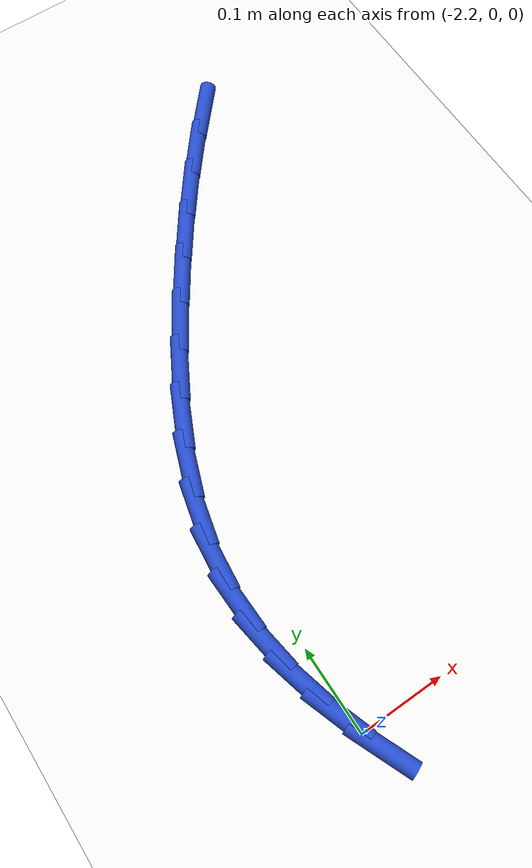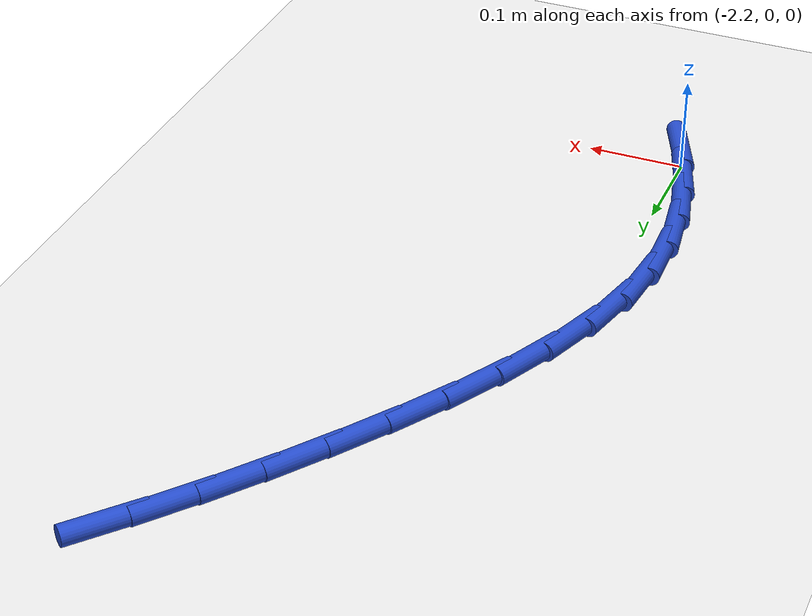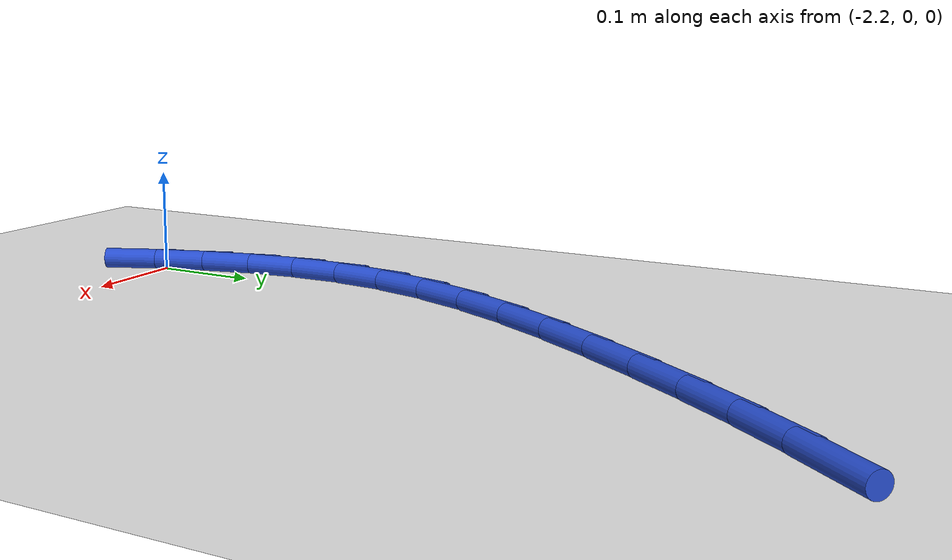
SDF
<sdf version="1.6">
 <world name="default">
  <model name="ground_plane">
   <static>1</static>
   <link name="link">
    <collision name="collision">
     <geometry><plane><normal>0 0 1</normal><size>100 100</size></plane></geometry>
     <surface><friction><ode><mu>100</mu><mu2>50</mu2></ode></friction></surface>
    </collision>
    <visual name="visual">
     <cast_shadows>0</cast_shadows>
     <geometry><plane><normal>0 0 1</normal><size>100 100</size></plane></geometry>
     <material>
      <script><uri>file://media/materials/scripts/gazebo.material</uri><name>Gazebo/WhiteGlow</name></script>
     </material>
    </visual>
   </link>
  </model>
  <model name="line">
   <link name="link_45">
    <pose>-1.9283471842501865 0.7311533086951119 0.01 0 1.57 0.8530518729398102</pose>
    <collision name="collision">
     <geometry><cylinder><radius>0.01</radius><length>0.08</length></cylinder></geometry>
    </collision>
    <visual name="visual">
     <material>
      <script><name>Gazebo/Blue</name><uri>file://media/materials/scripts/gazebo.material</uri></script>
     </material>
     <geometry><cylinder><radius>0.01</radius><length>0.08</length></cylinder></geometry>
    </visual>
   </link>
   <link name="link_46">
    <pose>-1.9676336620333479 0.6861560049116043 0.01 0 1.57 0.8902857034029146</pose>
    <collision name="collision">
     <geometry><cylinder><radius>0.01</radius><length>0.08</length></cylinder></geometry>
    </collision>
    <visual name="visual">
     <material>
      <script><name>Gazebo/Blue</name><uri>file://media/materials/scripts/gazebo.material</uri></script>
     </material>
     <geometry><cylinder><radius>0.01</radius><length>0.08</length></cylinder></geometry>
    </visual>
   </link>
   <link name="link_47">
    <pose>-2.005525923565966 0.639346902432091 0.01 0 1.57 0.9239231073220383</pose>
    <collision name="collision">
     <geometry><cylinder><radius>0.01</radius><length>0.08</length></cylinder></geometry>
    </collision>
    <visual name="visual">
     <material>
      <script><name>Gazebo/Blue</name><uri>file://media/materials/scripts/gazebo.material</uri></script>
     </material>
     <geometry><cylinder><radius>0.01</radius><length>0.08</length></cylinder></geometry>
    </visual>
   </link>
   <link name="link_48">
    <pose>-2.0420611039539525 0.5909740221530212 0.01 0 1.57 0.9542432506144645</pose>
    <collision name="collision">
     <geometry><cylinder><radius>0.01</radius><length>0.08</length></cylinder></geometry>
    </collision>
    <visual name="visual">
     <material>
      <script><name>Gazebo/Blue</name><uri>file://media/materials/scripts/gazebo.material</uri></script>
     </material>
     <geometry><cylinder><radius>0.01</radius><length>0.08</length></cylinder></geometry>
    </visual>
   </link>
   <link name="link_49">
    <pose>-2.0772763383032196 0.5412853849708448 0.01 0 1.57 0.9821154367694696</pose>
    <collision name="collision">
     <geometry><cylinder><radius>0.01</radius><length>0.08</length></cylinder></geometry>
    </collision>
    <visual name="visual">
     <material>
      <script><name>Gazebo/Blue</name><uri>file://media/materials/scripts/gazebo.material</uri></script>
     </material>
     <geometry><cylinder><radius>0.01</radius><length>0.08</length></cylinder></geometry>
    </visual>
   </link>
   <link name="link_50">
    <pose>-2.1111624512889846 0.4905308391790175 0.01 0 1.57 1.0166810365635992</pose>
    <collision name="collision">
     <geometry><cylinder><radius>0.01</radius><length>0.08</length></cylinder></geometry>
    </collision>
    <visual name="visual">
     <material>
      <script><name>Gazebo/Blue</name><uri>file://media/materials/scripts/gazebo.material</uri></script>
     </material>
     <geometry><cylinder><radius>0.01</radius><length>0.08</length></cylinder></geometry>
    </visual>
   </link>
   <link name="link_51">
    <pose>-2.143057463632288 0.4389859925375793 0.01 0 1.57 1.0659356515969112</pose>
    <collision name="collision">
     <geometry><cylinder><radius>0.01</radius><length>0.08</length></cylinder></geometry>
    </collision>
    <visual name="visual">
     <material>
      <script><name>Gazebo/Blue</name><uri>file://media/materials/scripts/gazebo.material</uri></script>
     </material>
     <geometry><cylinder><radius>0.01</radius><length>0.08</length></cylinder></geometry>
    </visual>
   </link>
   <link name="link_52">
    <pose>-2.171816634528062 0.3869455024451621 0.01 0 1.57 1.13278502183843</pose>
    <collision name="collision">
     <geometry><cylinder><radius>0.01</radius><length>0.08</length></cylinder></geometry>
    </collision>
    <visual name="visual">
     <material>
      <script><name>Gazebo/Blue</name><uri>file://media/materials/scripts/gazebo.material</uri></script>
     </material>
     <geometry><cylinder><radius>0.01</radius><length>0.08</length></cylinder></geometry>
    </visual>
   </link>
   <link name="link_53">
    <pose>-2.196283894926038 0.3347044733098753 0.01 0 1.57 1.221061423834442</pose>
    <collision name="collision">
     <geometry><cylinder><radius>0.01</radius><length>0.08</length></cylinder></geometry>
    </collision>
    <visual name="visual">
     <material>
      <script><name>Gazebo/Blue</name><uri>file://media/materials/scripts/gazebo.material</uri></script>
     </material>
     <geometry><cylinder><radius>0.01</radius><length>0.08</length></cylinder></geometry>
    </visual>
   </link>
   <link name="link_54">
    <pose>-2.2153031757759507 0.2825580095398271 0.01 0 1.57 1.335364383479442</pose>
    <collision name="collision">
     <geometry><cylinder><radius>0.01</radius><length>0.08</length></cylinder></geometry>
    </collision>
    <visual name="visual">
     <material>
      <script><name>Gazebo/Blue</name><uri>file://media/materials/scripts/gazebo.material</uri></script>
     </material>
     <geometry><cylinder><radius>0.01</radius><length>0.08</length></cylinder></geometry>
    </visual>
   </link>
   <link name="link_55">
    <pose>-2.2277186323031417 0.23080116034899256 0.01 0 1.57 1.4722209108541664</pose>
    <collision name="collision">
     <geometry><cylinder><radius>0.01</radius><length>0.08</length></cylinder></geometry>
    </collision>
    <visual name="visual">
     <material>
      <script><name>Gazebo/Blue</name><uri>file://media/materials/scripts/gazebo.material</uri></script>
     </material>
     <geometry><cylinder><radius>0.01</radius><length>0.08</length></cylinder></geometry>
    </visual>
   </link>
   <link name="link_56">
    <pose>-2.2327793192110215 0.1796293293572962 0.01 0 1.57 -1.535228381976342</pose>
    <collision name="collision">
     <geometry><cylinder><radius>0.01</radius><length>0.08</length></cylinder></geometry>
    </collision>
    <visual name="visual">
     <material>
      <script><name>Gazebo/Blue</name><uri>file://media/materials/scripts/gazebo.material</uri></script>
     </material>
     <geometry><cylinder><radius>0.01</radius><length>0.08</length></cylinder></geometry>
    </visual>
   </link>
   <link name="link_57">
    <pose>-2.2309753760421076 0.12893248971918608 0.01 0 1.57 -1.4144829695804568</pose>
    <collision name="collision">
     <geometry><cylinder><radius>0.01</radius><length>0.08</length></cylinder></geometry>
    </collision>
    <visual name="visual">
     <material>
      <script><name>Gazebo/Blue</name><uri>file://media/materials/scripts/gazebo.material</uri></script>
     </material>
     <geometry><cylinder><radius>0.01</radius><length>0.08</length></cylinder></geometry>
    </visual>
   </link>
   <link name="link_58">
    <pose>-2.223033929407661 0.07854229216953006 0.01 0 1.57 -1.3110986416426518</pose>
    <collision name="collision">
     <geometry><cylinder><radius>0.01</radius><length>0.08</length></cylinder></geometry>
    </collision>
    <visual name="visual">
     <material>
      <script><name>Gazebo/Blue</name><uri>file://media/materials/scripts/gazebo.material</uri></script>
     </material>
     <geometry><cylinder><radius>0.01</radius><length>0.08</length></cylinder></geometry>
    </visual>
   </link>
   <link name="link_59">
    <pose>-2.209682105918948 0.028290387443197302 0.01 0 1.57 -1.2264108517335026</pose>
    <collision name="collision">
     <geometry><cylinder><radius>0.01</radius><length>0.08</length></cylinder></geometry>
    </collision>
    <visual name="visual">
     <material>
      <script><name>Gazebo/Blue</name><uri>file://media/materials/scripts/gazebo.material</uri></script>
     </material>
     <geometry><cylinder><radius>0.01</radius><length>0.08</length></cylinder></geometry>
    </visual>
   </link>
   <link name="link_60">
    <pose>-2.191647032187231 -0.021991573724944452 0.01 0 1.57 -1.1599492911566696</pose>
    <collision name="collision">
     <geometry><cylinder><radius>0.01</radius><length>0.08</length></cylinder></geometry>
    </collision>
    <visual name="visual">
     <material>
      <script><name>Gazebo/Blue</name><uri>file://media/materials/scripts/gazebo.material</uri></script>
     </material>
     <geometry><cylinder><radius>0.01</radius><length>0.08</length></cylinder></geometry>
    </visual>
   </link>
  </model>
 </world>
</sdf>
